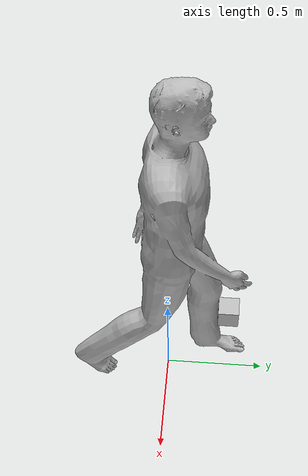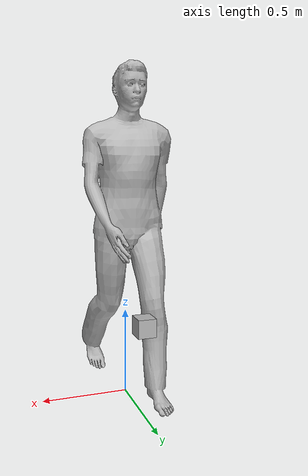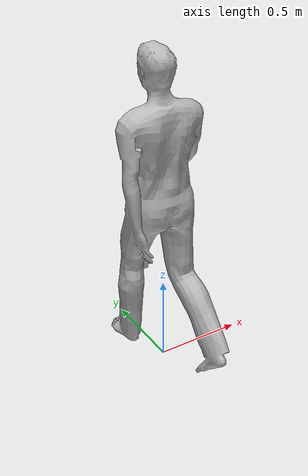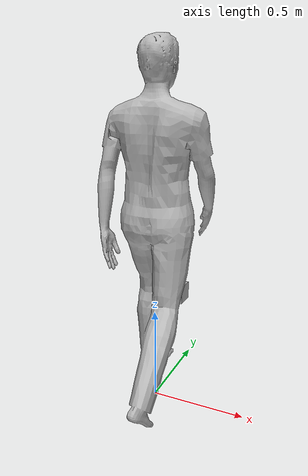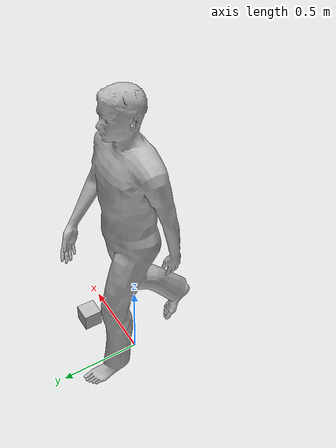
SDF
<?xml version="1.0" ?>
<sdf version="1.4">

<!-- NOTE: The pose tags below rotate the model 90 degrees so that the model's x-axis points forward -->

 <model name="person_walking_lidar">
    <pose>0 0 0 0 0 1.57</pose>
    <link name="person_link">
      <inertial>
        <mass>80.0</mass>
        <inertia>
          <ixx>27.82</ixx>
          <ixy>0</ixy>
          <ixz>0</ixz>
          <iyy>24.88</iyy>
          <iyz>0</iyz>
          <izz>4.57</izz>
        </inertia>
      </inertial>

      <collision name="person">
        <pose>0 0 0 0 0 0</pose>
        <geometry>
          <mesh>
            <uri>model://person_walking/meshes/walking.dae</uri>
          </mesh>
        </geometry>
        <surface>
          <contact>
            <collide_without_contact>true</collide_without_contact>
          </contact>
        </surface>
      </collision>

      <collision name="bottom">
        <pose>0 0 0 0 0 0</pose>
        <geometry>
          <box>
            <size>0.35 0.75 0.001</size>
          </box>
        </geometry>
        <surface>
          <contact>
            <collide_without_contact>false</collide_without_contact>
          </contact>
        </surface>
      </collision>

      <visual name="visual">
        <pose>0 0 0 0 0 1.57</pose>
        <geometry>
          <mesh>
            <uri>model://person_walking/meshes/walking.dae</uri>
          </mesh>
        </geometry>
      </visual>
    </link>

    <link name="lidar_link">
      <inertial>
        <pose>0 0 0 0 0 1.57</pose>
        <mass>0.1</mass>
      </inertial>

      <visual name="visual">
        <pose>0.3 0 0.5 0 0 1.57</pose>
        <geometry>
          <box>
            <size>0.1 0.1 0.1</size>
          </box>
        </geometry>
      </visual>

      <collision name="lidar_collision">
        <pose>0.3 0 0.5 0 0 0</pose>
        <geometry>
          <box>
            <size>0.1 0.1 0.1</size>
          </box>
        </geometry>
        <surface>
          <contact>
            <collide_without_contact>true</collide_without_contact>
          </contact>
        </surface>
      </collision>

      <sensor name="laser" type="ray">
        <pose>0.3 0 0.5 0 0 0</pose>
         <ray>
          <scan>
            <horizontal>
              <samples>50</samples>
              <min_angle>-1.57</min_angle>
              <max_angle>1.57</max_angle>
            </horizontal>
          </scan>
          <range>
            <min>0.08</min>
            <max>10</max>
            <resolution>0.05</resolution>
          </range>
        </ray>

        <always_on>1</always_on>
        <update_rate>10</update_rate>
        <visualize>true</visualize>

        <plugin name="laser" filename="libgazebo_ros_laser.so">
           <topicName>/person_3/scan</topicName>
           <frameName>/person_3_lidar_link</frameName>
        </plugin>

      </sensor>
    </link>

    <joint name="lidar_joint" type="revolute">
      <axis>
         <limit>
            <lower>0</lower>
            <upper>0.0</upper>
         </limit>
         <xyz>0 0 1</xyz>
        </axis>
      <child>lidar_link</child>
      <parent>person_link</parent>
    </joint>
  </model>

</sdf>
